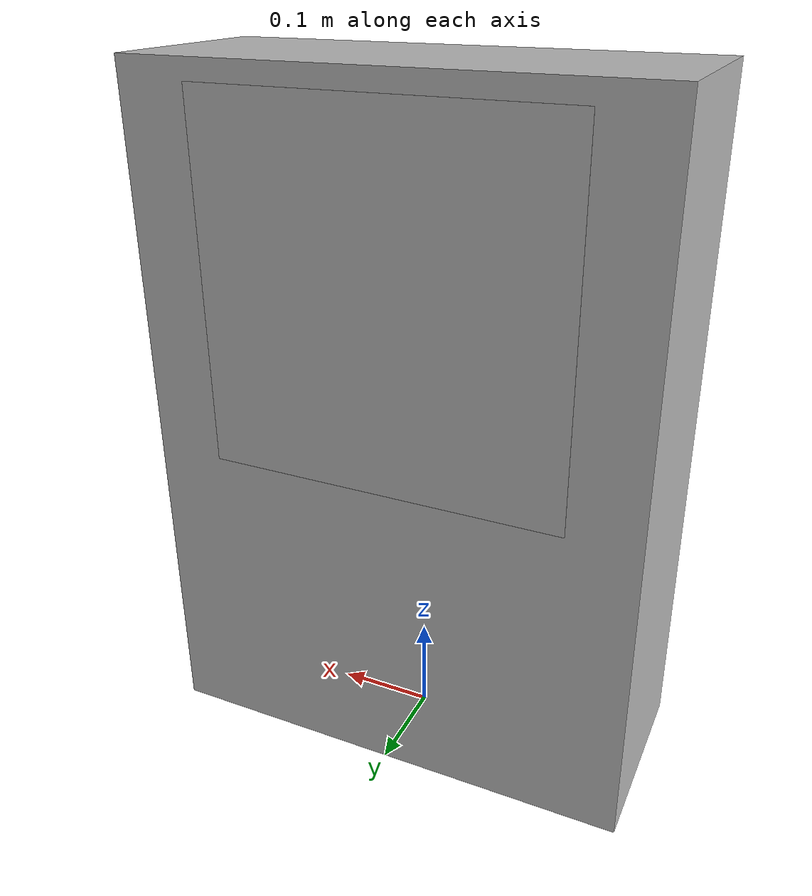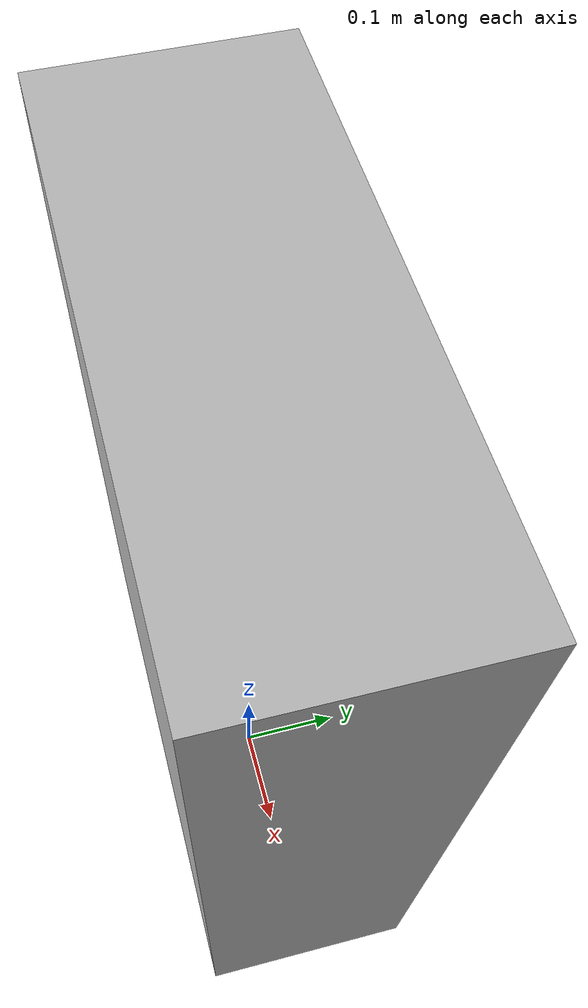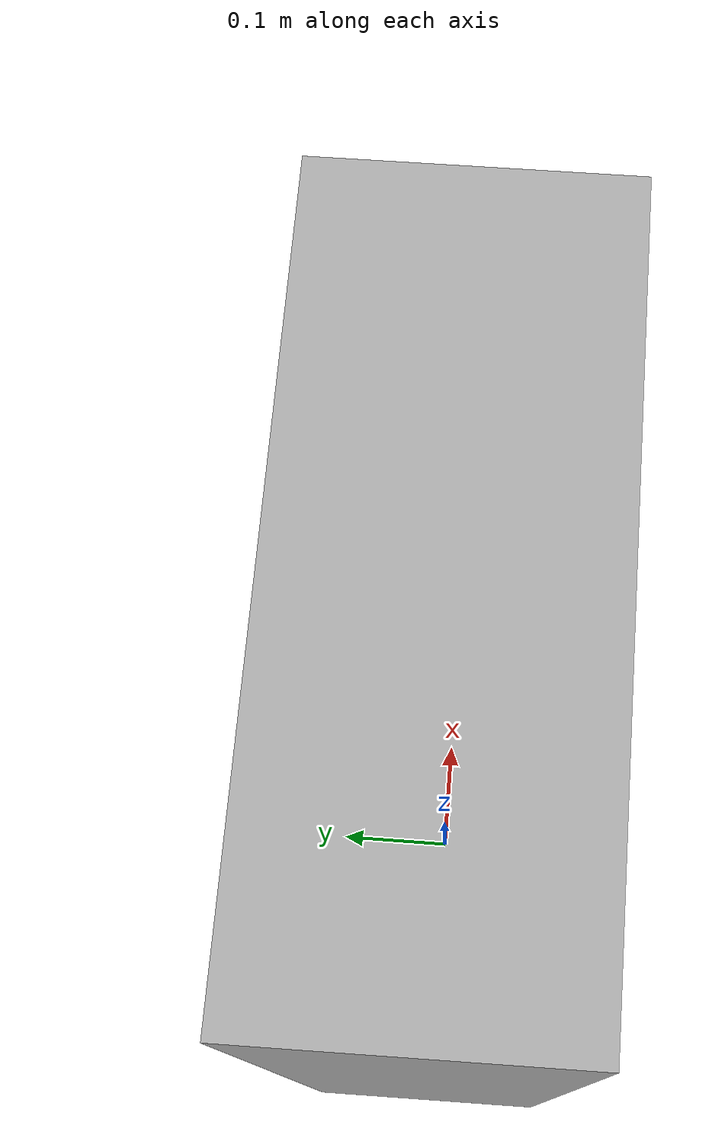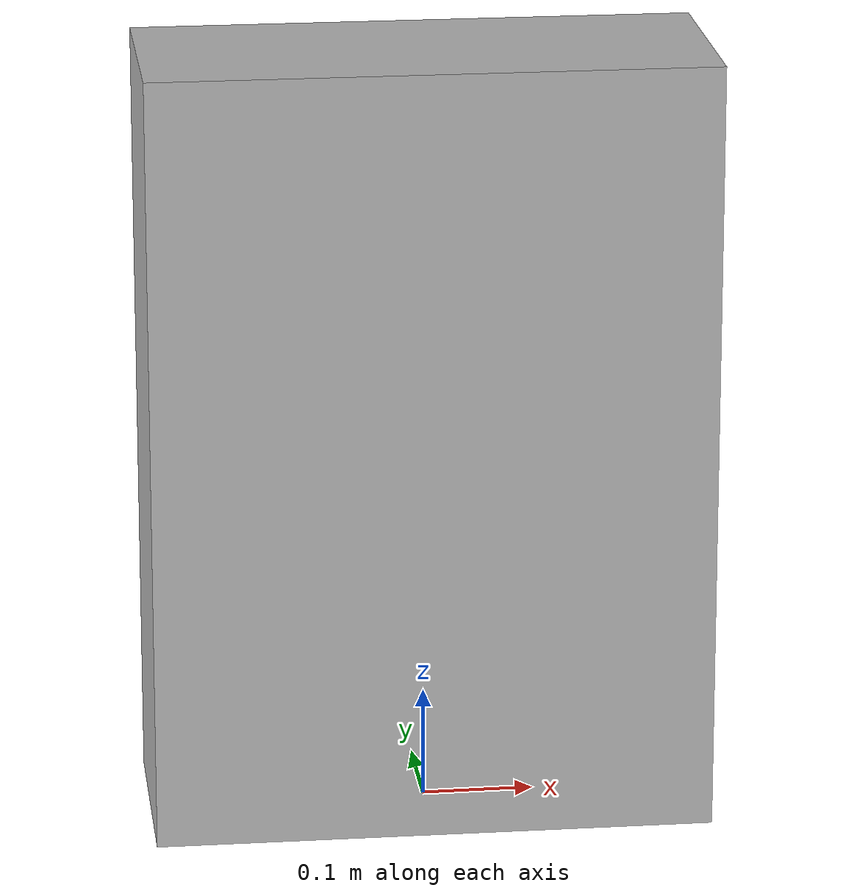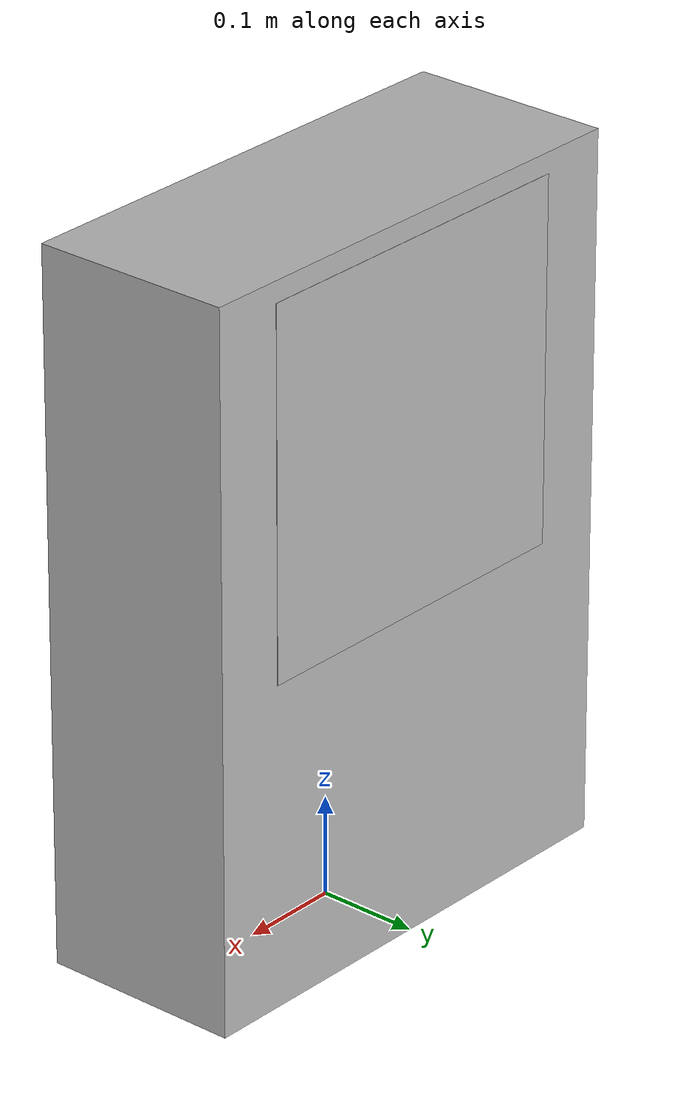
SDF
<sdf version="1.6">
  <model name="aruco_on_box">

    <model name="box">
      <static>true</static>
        <pose>0 0 0.35 0 0 0</pose>
        <link name="link">
          <collision name="collision">
            <geometry>
              <box>
                <size>0.5 0.2 0.7</size>
              </box>
            </geometry>
          </collision>
          <visual name="visual">
            <geometry>
              <box>
                <size>0.5 0.2 0.7</size>
              </box>
            </geometry>
            <material>
              <script>Gazebo/WoodPallet</script>
            </material>
          </visual>
        </link>
      </model>

    <include>
      <uri>model://aruco_fam4x4_1000_id25_sdf</uri>
      <name>aruco</name>
      <pose>0 0.101 0.5 1.5708 0 3.1416</pose>
    </include>

    <joint name="aruco_box_joint" type="fixed">
      <parent>box::link</parent>
      <child>aruco::link</child>

    </joint>
  </model>
</sdf>

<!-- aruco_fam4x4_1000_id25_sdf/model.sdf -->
<sdf version="1.6">
  <model name="aruco_fam4x4_1000_id25_sdf">
    <pose>0 0 0 0 0 0</pose>
    <static>true</static>
    <link name="link">
      <collision name="collision">
        <geometry>
          <plane>
            <normal>0 0 1</normal>
            <size>0.1 0.1</size>
          </plane>
        </geometry>
        <surface>
          <friction>
            <ode>
              <mu>100</mu>
              <mu2>50</mu2>
            </ode>
          </friction>
        </surface>
      </collision>
      <visual name="visual">
        <cast_shadows>false</cast_shadows>
        <geometry>
          <plane>
            <normal>0 0 1</normal>
            <size>0.36 0.36</size>
          </plane>
        <mesh>
          <uri>model://aruco_fam4x4_1000_id25_sdf/materials/textures/aruco_fam4x4_1000_id25_sdf.dae</uri>
        </mesh>
        </geometry>
        <material>
          <script>
            <uri>model://aruco_fam4x4_1000_id25_sdf/materials/scripts/</uri>
            <uri>model://aruco_fam4x4_1000_id25_sdf/materials/textures/</uri>
            <name>aruco_fam4x4_1000_id25_sdf/Image</name>
          </script>
        </material>
      </visual>
    </link>
  </model>
</sdf>
